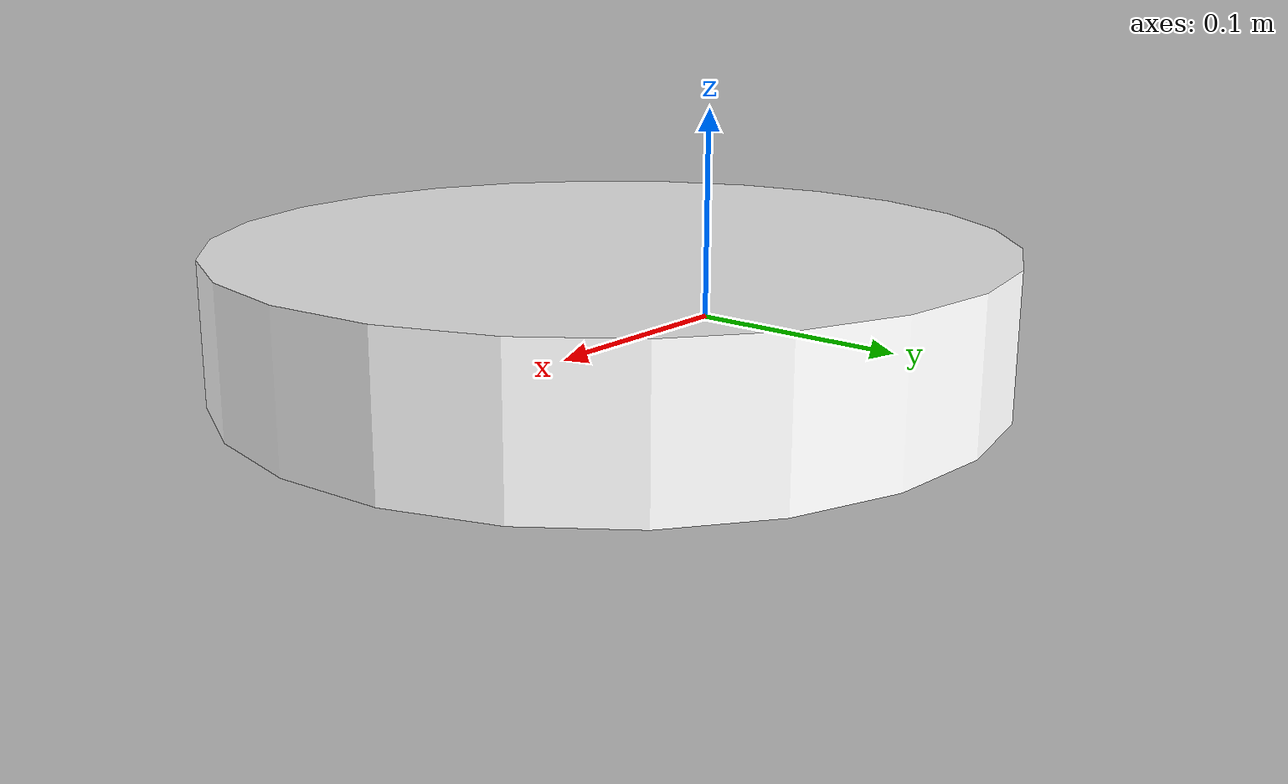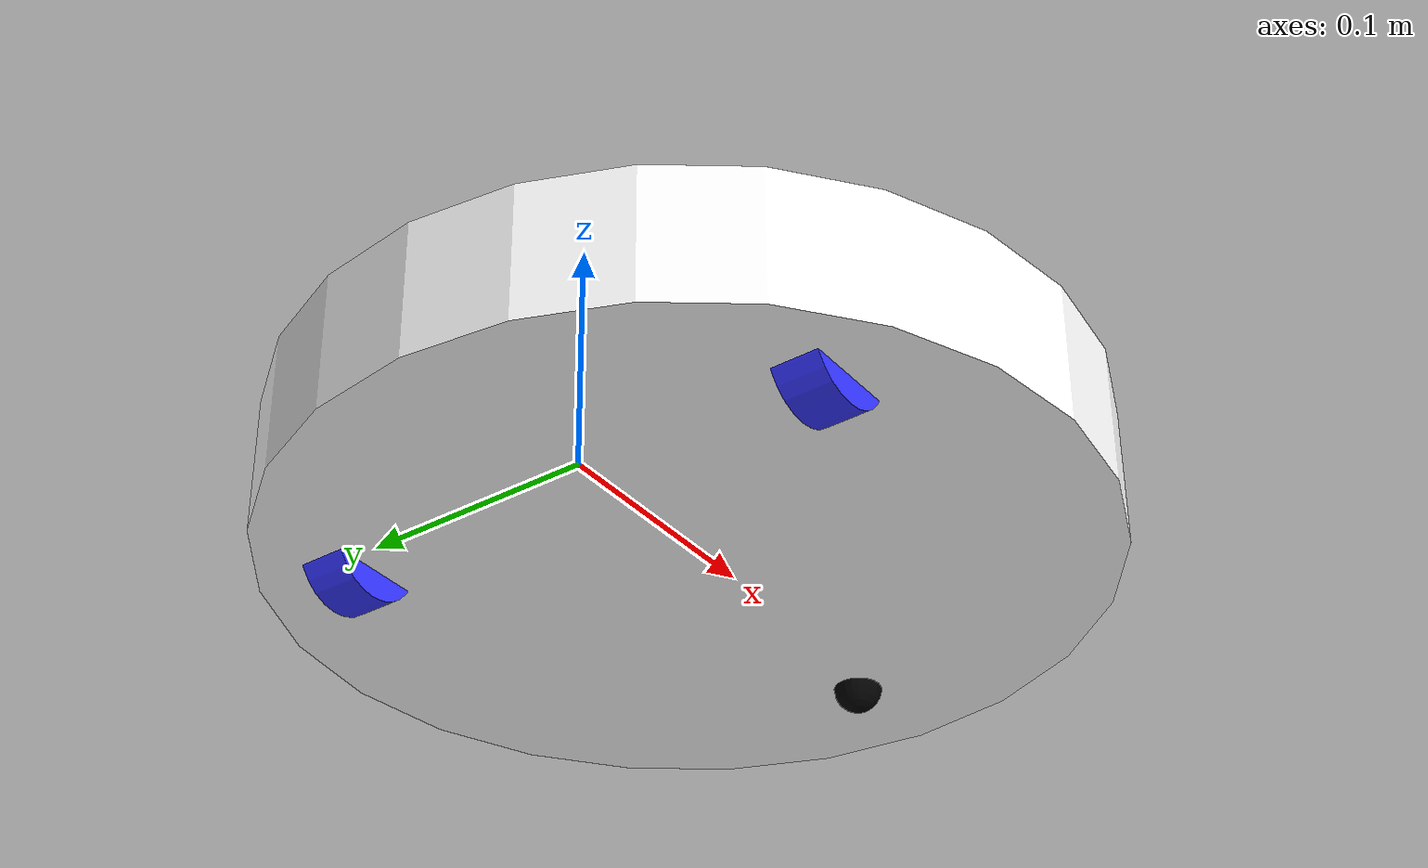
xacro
<?xml version="1.0"?>
<robot xmlns:xacro="http://www.ros.org/wiki/xacro">

    <xacro:include filename="inertial_macros.xacro"/>

    <material name="white">
        <color rgba="1 1 1 1"/>
    </material>

    <material name="orange">
        <color rgba="1 0.3 0.1 1"/>
    </material>

    <material name="blue">
        <color rgba="0.2 0.2 1 1"/>
    </material>

    <material name="black">
        <color rgba="0 0 0 1"/>
    </material>

    <link name="base_link">

    </link>

    <joint name="base_footprint_joint" type="fixed">
        <parent link="base_link"/>
        <child link="base_footprint"/>
        <origin xyz="0.0 0.0 0.0" rpy="0.0 0.0 0.0"/>
    </joint>

    <link name="base_footprint">

    </link>

    <joint name="chassis_joint" type="fixed">
        <parent link="base_link"/>
        <child link="chassis"/>
        <origin xyz="-0.08 0.0 0.0" rpy="0.0 0.0 0.0"/>

    </joint>

    <link name="chassis">
        <visual>
            <origin xyz="0.15 0.0 0.02"/>

            <geometry>
                <cylinder radius="0.17" length="0.06"/>
            </geometry>
            <material name="white"></material>
        </visual>
        <collision>
            <origin xyz="0.15 0.0 0.01"/>

            <geometry>
                <cylinder radius="0.17" length="0.06"/>
            </geometry>
        </collision>
        <xacro:inertial_cylinder mass="1" radius="0.17" length="0.06">
            <origin xyz="0.15 0.0 0.01" rpy="0.0 0.0 0.0"/>
        </xacro:inertial_cylinder>
    </link>

    <gazebo reference="chassis">
        <material>Gazebo/White</material>
    </gazebo>

    <joint name="left_wheel_joint" type="continuous">
        <parent link="base_link"/>
        <child link="left_wheel"/>
        <origin xyz="0.0 0.11 0.0" rpy="-${pi/2} 0.0 0.0"/>
        <axis xyz="0.0 0.0 1"/>
    </joint>

    <link name="left_wheel">
        <visual>
            <geometry>
                <cylinder radius="0.022" length="0.02"/>
            </geometry>
            <material name="blue"></material>
        </visual>
        <collision>
            <geometry>
                <cylinder radius="0.03" length="0.02"/>
            </geometry>
        </collision>
        <xacro:inertial_cylinder mass="0.1" radius="0.022" length="0.02">
            <origin xyz="0.0 0.0 0.0" rpy="0.0 0.0 0.0"/>
        </xacro:inertial_cylinder>
    </link>

    <gazebo reference="left_wheel">
        <material>Gazebo/Blue</material>
    </gazebo>

    <joint name="right_wheel_joint" type="continuous">
        <parent link="base_link"/>
        <child link="right_wheel"/>
        <origin xyz="0.0 -0.11 0.0" rpy="${pi/2} 0.0 0.0"/>
        <axis xyz="0.0 0.0 -1"/>
    </joint>

    <link name="right_wheel">
        <visual>
            <geometry>
                <cylinder radius="0.022" length="0.02"/>
            </geometry>
            <material name="blue"></material>
        </visual>
        <collision>
            <geometry>
                <cylinder radius="0.022" length="0.02"/>
            </geometry>
        </collision>
        <xacro:inertial_cylinder mass="0.1" radius="0.03" length="0.04">
            <origin xyz="0.0 0.0 0.0" rpy="0.0 0.0 0.0"/>
        </xacro:inertial_cylinder>
    </link>

    <gazebo reference="right_wheel">
        <material>Gazebo/Blue</material>
    </gazebo>

    <joint name="caster_wheel" type="fixed">
        <parent link="chassis"/>
        <child link="caster_wheel"/>
        <origin xyz="0.27 0.0 -0.01" rpy="0.0 0.0 0.0"/>
    </joint>

    <link name="caster_wheel">
        <visual>
            <geometry>
                <sphere radius="0.01"/>
            </geometry>
            <material name="black"></material>
        </visual>
        <collision>
            <geometry>
                <sphere radius="0.01"/>
            </geometry>
        </collision>
        <xacro:inertial_sphere mass="0.1" radius="0.01">
            <origin xyz="0.0 0.0 0.0" rpy="0.0 0.0 0.0"/>
        </xacro:inertial_sphere>
    </link>

    <gazebo reference="caster_wheel">
        <material>Gazebo/Black</material>
        <mu1 value="0.001"></mu1>
        <mu2 value="0.001"></mu2>
    </gazebo>

</robot>
